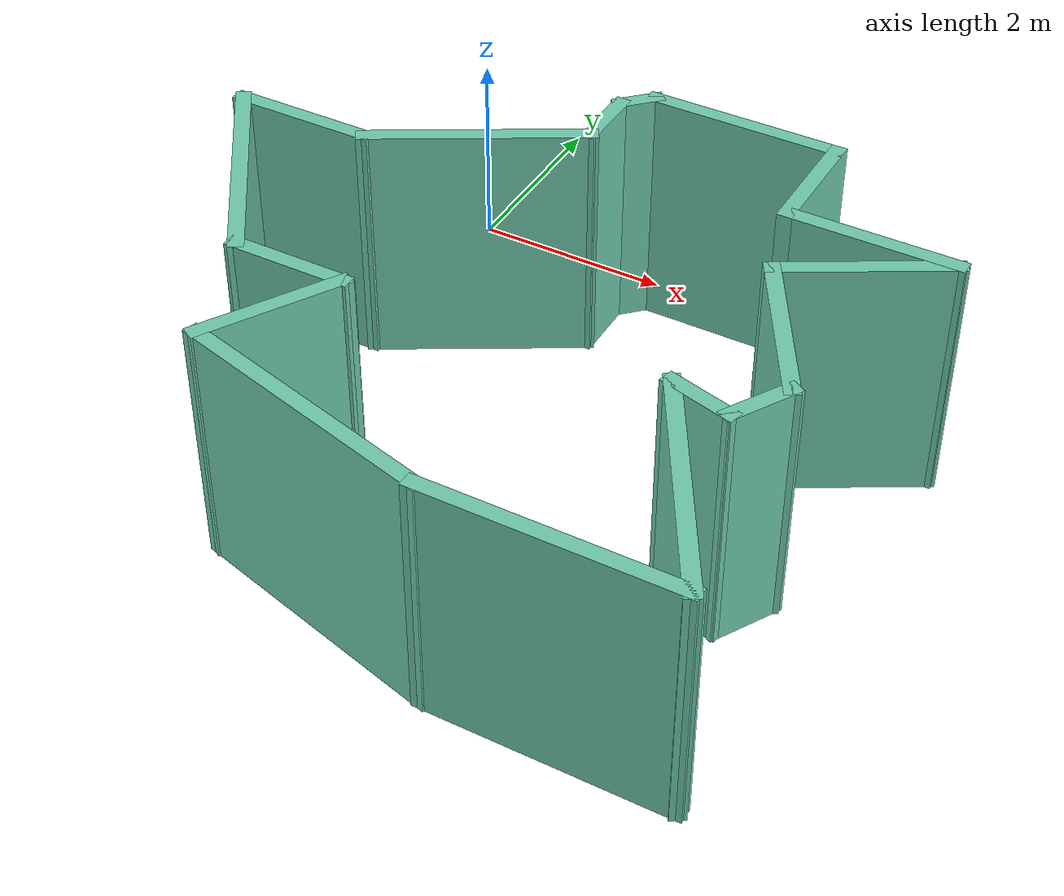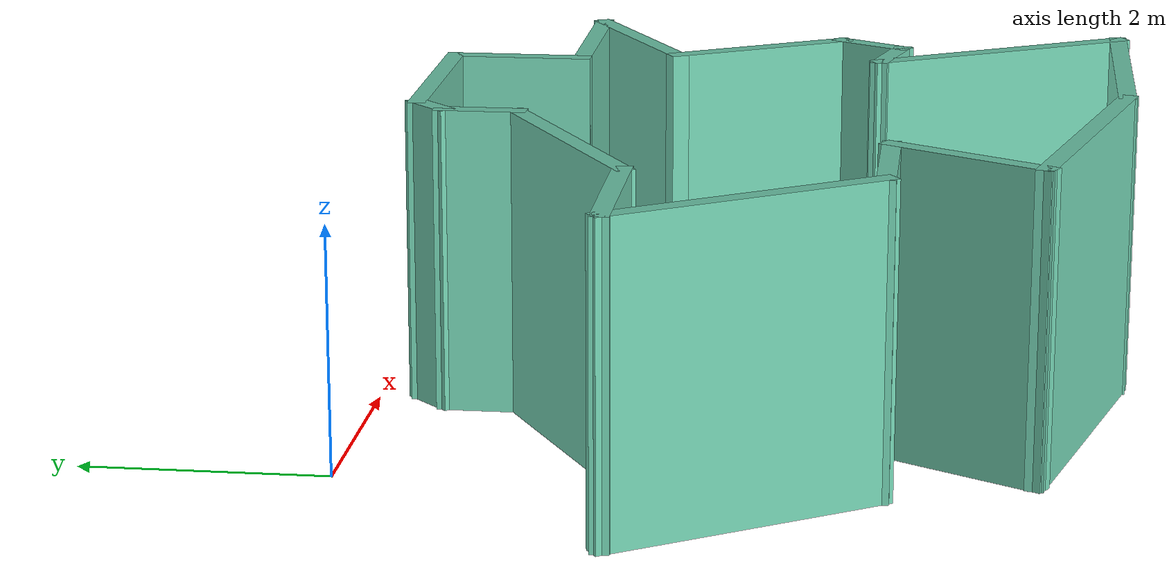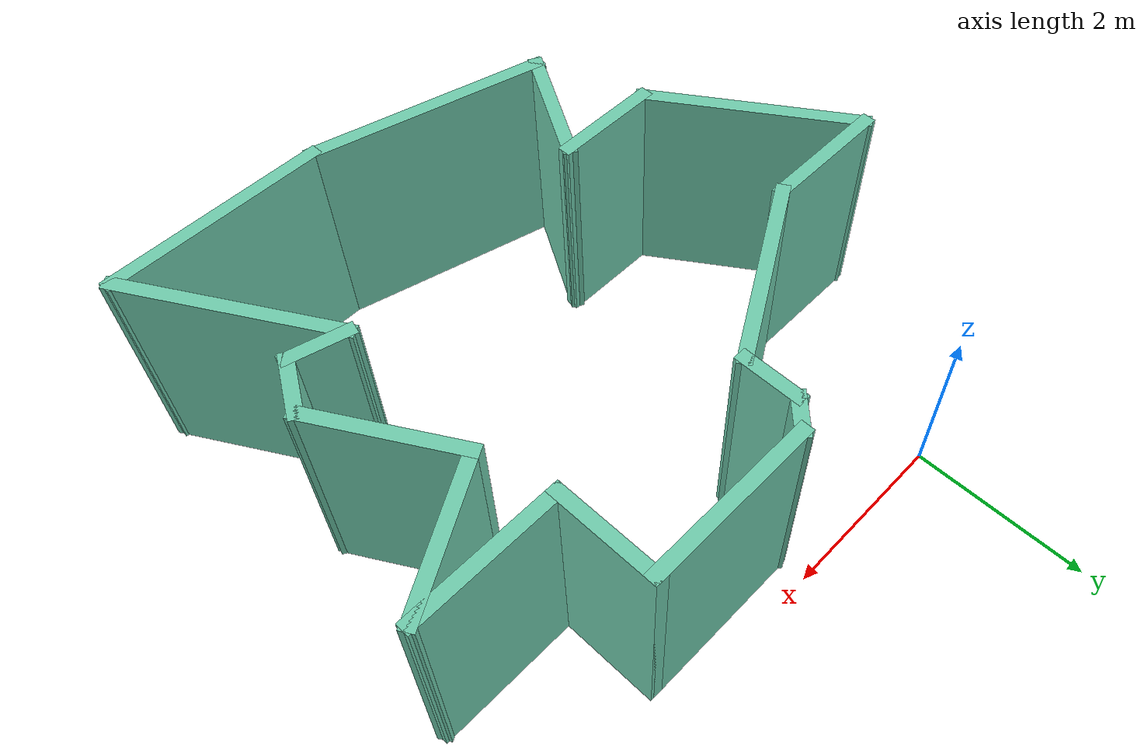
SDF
<?xml version='1.0'?>
<sdf version='1.7'>
  <model name='new_world'>
    <pose>2.07232 -3.06504 0 0 -0 0</pose>
    <link name='Wall_0'>
      <collision name='Wall_0_Collision'>
        <geometry>
          <box>
            <size>1.5 0.15 2.5</size>
          </box>
        </geometry>
        <pose>0 0 1.25 0 -0 0</pose>
      </collision>
      <visual name='Wall_0_Visual'>
        <pose>0 0 1.25 0 -0 0</pose>
        <geometry>
          <box>
            <size>1.5 0.15 2.5</size>
          </box>
        </geometry>
        <material>
          <script>
            <uri>file://media/materials/scripts/gazebo.material</uri>
            <name>Gazebo/Grey</name>
          </script>
          <ambient>0.435294 0.796078 0.67451 1</ambient>
        </material>
        <meta>
          <layer>0</layer>
        </meta>
      </visual>
      <pose>-2.75732 0.825044 0 0 -0 0</pose>
    </link>
    <link name='Wall_11'>
      <collision name='Wall_11_Collision'>
        <geometry>
          <box>
            <size>2.25 0.15 2.5</size>
          </box>
        </geometry>
        <pose>0 0 1.25 0 -0 0</pose>
      </collision>
      <visual name='Wall_11_Visual'>
        <pose>0 0 1.25 0 -0 0</pose>
        <geometry>
          <box>
            <size>2.25 0.15 2.5</size>
          </box>
        </geometry>
        <material>
          <script>
            <uri>file://media/materials/scripts/gazebo.material</uri>
            <name>Gazebo/Grey</name>
          </script>
          <ambient>0.435294 0.796078 0.67451 1</ambient>
        </material>
        <meta>
          <layer>0</layer>
        </meta>
      </visual>
      <pose>-1.173 1.35004 0 0 -0 0.523599</pose>
    </link>
    <link name='Wall_12'>
      <collision name='Wall_12_Collision'>
        <geometry>
          <box>
            <size>0.75 0.15 2.5</size>
          </box>
        </geometry>
        <pose>0 0 1.25 0 -0 0</pose>
      </collision>
      <visual name='Wall_12_Visual'>
        <pose>0 0 1.25 0 -0 0</pose>
        <geometry>
          <box>
            <size>0.75 0.15 2.5</size>
          </box>
        </geometry>
        <material>
          <script>
            <uri>file://media/materials/scripts/gazebo.material</uri>
            <name>Gazebo/Grey</name>
          </script>
          <ambient>0.435294 0.796078 0.67451 1</ambient>
        </material>
        <meta>
          <layer>0</layer>
        </meta>
      </visual>
      <pose>-0.263668 2.17504 0 0 -0 1.5708</pose>
    </link>
    <link name='Wall_13'>
      <collision name='Wall_13_Collision'>
        <geometry>
          <box>
            <size>0.5 0.15 2.5</size>
          </box>
        </geometry>
        <pose>0 0 1.25 0 -0 0</pose>
      </collision>
      <visual name='Wall_13_Visual'>
        <pose>0 0 1.25 0 -0 0</pose>
        <geometry>
          <box>
            <size>0.5 0.15 2.5</size>
          </box>
        </geometry>
        <material>
          <script>
            <uri>file://media/materials/scripts/gazebo.material</uri>
            <name>Gazebo/Grey</name>
          </script>
          <ambient>0.435294 0.796078 0.67451 1</ambient>
        </material>
        <meta>
          <layer>0</layer>
        </meta>
      </visual>
      <pose>-0.139924 2.59879 0 0 -0 0.785398</pose>
    </link>
    <link name='Wall_14'>
      <collision name='Wall_14_Collision'>
        <geometry>
          <box>
            <size>2 0.15 2.5</size>
          </box>
        </geometry>
        <pose>0 0 1.25 0 -0 0</pose>
      </collision>
      <visual name='Wall_14_Visual'>
        <pose>0 0 1.25 0 -0 0</pose>
        <geometry>
          <box>
            <size>2 0.15 2.5</size>
          </box>
        </geometry>
        <material>
          <script>
            <uri>file://media/materials/scripts/gazebo.material</uri>
            <name>Gazebo/Grey</name>
          </script>
          <ambient>0.435294 0.796078 0.67451 1</ambient>
        </material>
        <meta>
          <layer>0</layer>
        </meta>
      </visual>
      <pose>0.908819 2.72253 0 0 -0 0</pose>
    </link>
    <link name='Wall_15'>
      <collision name='Wall_15_Collision'>
        <geometry>
          <box>
            <size>1.25 0.15 2.5</size>
          </box>
        </geometry>
        <pose>0 0 1.25 0 -0 0</pose>
      </collision>
      <visual name='Wall_15_Visual'>
        <pose>0 0 1.25 0 -0 0</pose>
        <geometry>
          <box>
            <size>1.25 0.15 2.5</size>
          </box>
        </geometry>
        <material>
          <script>
            <uri>file://media/materials/scripts/gazebo.material</uri>
            <name>Gazebo/Grey</name>
          </script>
          <ambient>0.435294 0.796078 0.67451 1</ambient>
        </material>
        <meta>
          <layer>0</layer>
        </meta>
      </visual>
      <pose>1.83382 2.17253 0 0 -0 -1.5708</pose>
    </link>
    <link name='Wall_16'>
      <collision name='Wall_16_Collision'>
        <geometry>
          <box>
            <size>1.75 0.15 2.5</size>
          </box>
        </geometry>
        <pose>0 0 1.25 0 -0 0</pose>
      </collision>
      <visual name='Wall_16_Visual'>
        <pose>0 0 1.25 0 -0 0</pose>
        <geometry>
          <box>
            <size>1.75 0.15 2.5</size>
          </box>
        </geometry>
        <material>
          <script>
            <uri>file://media/materials/scripts/gazebo.material</uri>
            <name>Gazebo/Grey</name>
          </script>
          <ambient>0.435294 0.796078 0.67451 1</ambient>
        </material>
        <meta>
          <layer>0</layer>
        </meta>
      </visual>
      <pose>2.63382 1.62253 0 0 -0 0</pose>
    </link>
    <link name='Wall_17'>
      <collision name='Wall_17_Collision'>
        <geometry>
          <box>
            <size>1.75 0.15 2.5</size>
          </box>
        </geometry>
        <pose>0 0 1.25 0 -0 0</pose>
      </collision>
      <visual name='Wall_17_Visual'>
        <pose>0 0 1.25 0 -0 0</pose>
        <geometry>
          <box>
            <size>1.75 0.15 2.5</size>
          </box>
        </geometry>
        <material>
          <script>
            <uri>file://media/materials/scripts/gazebo.material</uri>
            <name>Gazebo/Grey</name>
          </script>
          <ambient>0.435294 0.796078 0.67451 1</ambient>
        </material>
        <meta>
          <layer>0</layer>
        </meta>
      </visual>
      <pose>2.741 1.22253 0 0 -0 -2.61799</pose>
    </link>
    <link name='Wall_18'>
      <collision name='Wall_18_Collision'>
        <geometry>
          <box>
            <size>1.75 0.15 2.5</size>
          </box>
        </geometry>
        <pose>0 0 1.25 0 -0 0</pose>
      </collision>
      <visual name='Wall_18_Visual'>
        <pose>0 0 1.25 0 -0 0</pose>
        <geometry>
          <box>
            <size>1.75 0.15 2.5</size>
          </box>
        </geometry>
        <material>
          <script>
            <uri>file://media/materials/scripts/gazebo.material</uri>
            <name>Gazebo/Grey</name>
          </script>
          <ambient>0.435294 0.796078 0.67451 1</ambient>
        </material>
        <meta>
          <layer>0</layer>
        </meta>
      </visual>
      <pose>2.44818 0.129711 0 0 -0 -1.0472</pose>
    </link>
    <link name='Wall_19'>
      <collision name='Wall_19_Collision'>
        <geometry>
          <box>
            <size>0.75 0.15 2.5</size>
          </box>
        </geometry>
        <pose>0 0 1.25 0 -0 0</pose>
      </collision>
      <visual name='Wall_19_Visual'>
        <pose>0 0 1.25 0 -0 0</pose>
        <geometry>
          <box>
            <size>0.75 0.15 2.5</size>
          </box>
        </geometry>
        <material>
          <script>
            <uri>file://media/materials/scripts/gazebo.material</uri>
            <name>Gazebo/Grey</name>
          </script>
          <ambient>0.435294 0.796078 0.67451 1</ambient>
        </material>
        <meta>
          <layer>0</layer>
        </meta>
      </visual>
      <pose>2.69818 -0.822917 0 0 -0 -2.0944</pose>
    </link>
    <link name='Wall_20'>
      <collision name='Wall_20_Collision'>
        <geometry>
          <box>
            <size>0.75 0.15 2.5</size>
          </box>
        </geometry>
        <pose>0 0 1.25 0 -0 0</pose>
      </collision>
      <visual name='Wall_20_Visual'>
        <pose>0 0 1.25 0 -0 0</pose>
        <geometry>
          <box>
            <size>0.75 0.15 2.5</size>
          </box>
        </geometry>
        <material>
          <script>
            <uri>file://media/materials/scripts/gazebo.material</uri>
            <name>Gazebo/Grey</name>
          </script>
          <ambient>0.435294 0.796078 0.67451 1</ambient>
        </material>
        <meta>
          <layer>0</layer>
        </meta>
      </visual>
      <pose>2.2584 -1.00508 0 0 -0 2.87979</pose>
    </link>
    <link name='Wall_21'>
      <collision name='Wall_21_Collision'>
        <geometry>
          <box>
            <size>2.5 0.15 2.5</size>
          </box>
        </geometry>
        <pose>0 0 1.25 0 -0 0</pose>
      </collision>
      <visual name='Wall_21_Visual'>
        <pose>0 0 1.25 0 -0 0</pose>
        <geometry>
          <box>
            <size>2.5 0.15 2.5</size>
          </box>
        </geometry>
        <material>
          <script>
            <uri>file://media/materials/scripts/gazebo.material</uri>
            <name>Gazebo/Grey</name>
          </script>
          <ambient>0.435294 0.796078 0.67451 1</ambient>
        </material>
        <meta>
          <layer>0</layer>
        </meta>
      </visual>
      <pose>2.55612 -1.94501 0 0 -0 -1.0472</pose>
    </link>
    <link name='Wall_22'>
      <collision name='Wall_22_Collision'>
        <geometry>
          <box>
            <size>2.5 0.15 2.5</size>
          </box>
        </geometry>
        <pose>0 0 1.25 0 -0 0</pose>
      </collision>
      <visual name='Wall_22_Visual'>
        <pose>0 0 1.25 0 -0 0</pose>
        <geometry>
          <box>
            <size>2.5 0.15 2.5</size>
          </box>
        </geometry>
        <material>
          <script>
            <uri>file://media/materials/scripts/gazebo.material</uri>
            <name>Gazebo/Grey</name>
          </script>
          <ambient>0.435294 0.796078 0.67451 1</ambient>
        </material>
        <meta>
          <layer>0</layer>
        </meta>
      </visual>
      <pose>1.96862 -2.96259 0 0 -0 3.14159</pose>
    </link>
    <link name='Wall_23'>
      <collision name='Wall_23_Collision'>
        <geometry>
          <box>
            <size>2.75 0.15 2.5</size>
          </box>
        </geometry>
        <pose>0 0 1.25 0 -0 0</pose>
      </collision>
      <visual name='Wall_23_Visual'>
        <pose>0 0 1.25 0 -0 0</pose>
        <geometry>
          <box>
            <size>2.75 0.15 2.5</size>
          </box>
        </geometry>
        <material>
          <script>
            <uri>file://media/materials/scripts/gazebo.material</uri>
            <name>Gazebo/Grey</name>
          </script>
          <ambient>0.435294 0.796078 0.67451 1</ambient>
        </material>
        <meta>
          <layer>0</layer>
        </meta>
      </visual>
      <pose>-0.46208 -2.62613 0 0 -0 2.87979</pose>
    </link>
    <link name='Wall_24'>
      <collision name='Wall_24_Collision'>
        <geometry>
          <box>
            <size>1.5 0.15 2.5</size>
          </box>
        </geometry>
        <pose>0 0 1.25 0 -0 0</pose>
      </collision>
      <visual name='Wall_24_Visual'>
        <pose>0 0 1.25 0 -0 0</pose>
        <geometry>
          <box>
            <size>1.5 0.15 2.5</size>
          </box>
        </geometry>
        <material>
          <script>
            <uri>file://media/materials/scripts/gazebo.material</uri>
            <name>Gazebo/Grey</name>
          </script>
          <ambient>0.435294 0.796078 0.67451 1</ambient>
        </material>
        <meta>
          <layer>0</layer>
        </meta>
      </visual>
      <pose>-1.38028 -1.7051 0 0 -0 1.0472</pose>
    </link>
    <link name='Wall_25'>
      <collision name='Wall_25_Collision'>
        <geometry>
          <box>
            <size>1.25 0.15 2.5</size>
          </box>
        </geometry>
        <pose>0 0 1.25 0 -0 0</pose>
      </collision>
      <visual name='Wall_25_Visual'>
        <pose>0 0 1.25 0 -0 0</pose>
        <geometry>
          <box>
            <size>1.25 0.15 2.5</size>
          </box>
        </geometry>
        <material>
          <script>
            <uri>file://media/materials/scripts/gazebo.material</uri>
            <name>Gazebo/Grey</name>
          </script>
          <ambient>0.435294 0.796078 0.67451 1</ambient>
        </material>
        <meta>
          <layer>0</layer>
        </meta>
      </visual>
      <pose>-1.59278 -1.12053 0 0 -0 3.14159</pose>
    </link>
    <link name='Wall_26'>
      <collision name='Wall_26_Collision'>
        <geometry>
          <box>
            <size>2.48413 0.15 2.5</size>
          </box>
        </geometry>
        <pose>0 0 1.25 0 -0 0</pose>
      </collision>
      <visual name='Wall_26_Visual'>
        <pose>0 0 1.25 0 -0 0</pose>
        <geometry>
          <box>
            <size>2.48413 0.15 2.5</size>
          </box>
        </geometry>
        <material>
          <script>
            <uri>file://media/materials/scripts/gazebo.material</uri>
            <name>Gazebo/Grey</name>
          </script>
          <ambient>0.435294 0.796078 0.67451 1</ambient>
        </material>
        <meta>
          <layer>0</layer>
        </meta>
      </visual>
      <pose>-2.78755 -0.147742 0 0 -0 2.15612</pose>
    </link>
    <static>1</static>
  </model>
</sdf>
